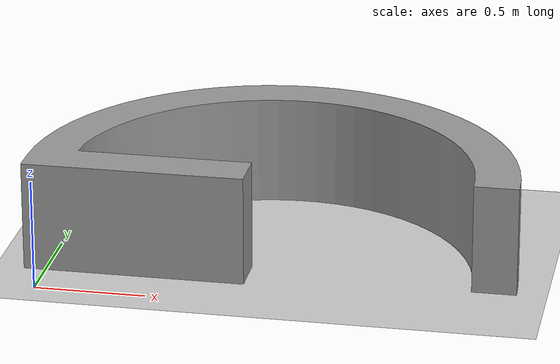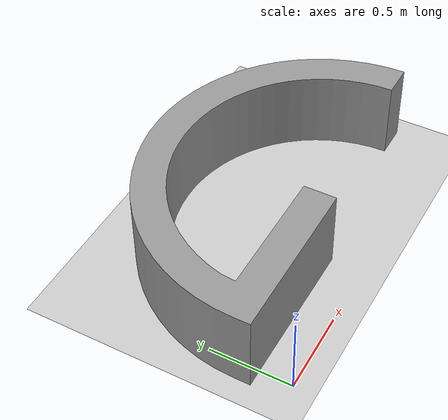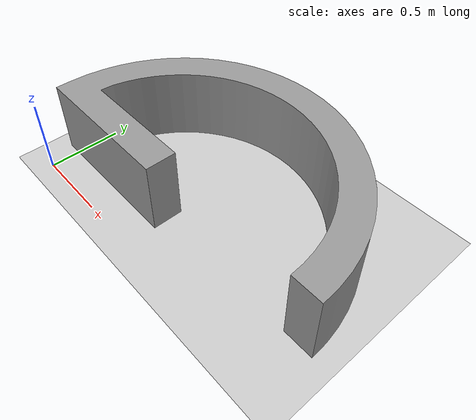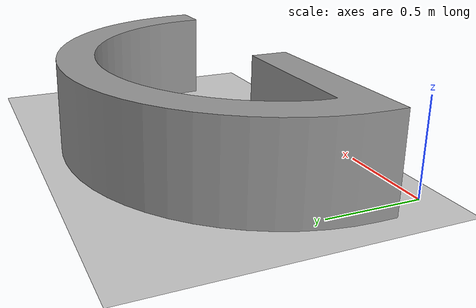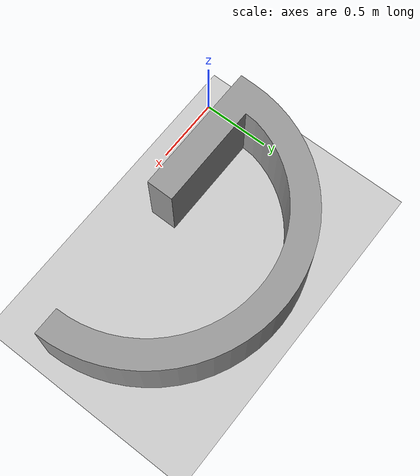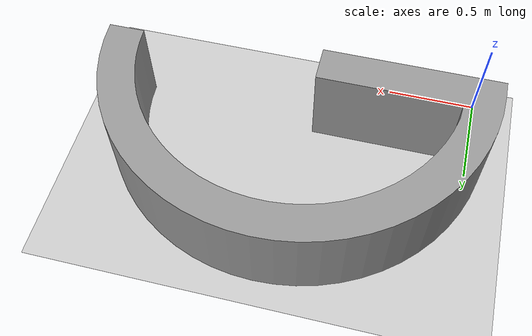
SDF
<sdf version="1.7">
 <world name="default">
  <scene><ambient>0.4 0.4 0.4 1</ambient><background>0.7 0.7 0.7 1</background><shadows>1</shadows></scene>
  <light name="sun" type="directional">
   <pose>0 0 10 0 -0 0</pose>
   <diffuse>0.8 0.8 0.8 1</diffuse>
   <specular>0.2 0.2 0.2 1</specular>
   <attenuation>
    <range>1000</range>
    <constant>0.9</constant>
    <linear>0.01</linear>
    <quadratic>0.001</quadratic>
   </attenuation>
   <direction>-0.5 0.1 -0.9</direction>
   <spot><inner_angle>0</inner_angle><outer_angle>0</outer_angle><falloff>0</falloff></spot>
  </light>
  <model name="ground_plane">
   <static>1</static>
   <link name="link">
    <collision name="collision">
     <geometry><plane><normal>0 0 1</normal><size>100 100</size></plane></geometry>
     <surface>
      <contact><collide_bitmask>65535</collide_bitmask></contact>
      <friction><ode><mu>100</mu><mu2>50</mu2></ode></friction>
     </surface>
    </collision>
    <visual name="visual">
     <cast_shadows>0</cast_shadows>
     <geometry><plane><normal>0 0 1</normal><size>100 100</size></plane></geometry>
     <material>
      <script><uri>file://media/materials/scripts/gazebo.material</uri><name>Gazebo/Grey</name></script>
     </material>
    </visual>
   </link>
  </model>
  <physics type="ode">
   <real_time_update_rate>1000</real_time_update_rate>
   <max_step_size>0.001</max_step_size>
   <real_time_factor>1</real_time_factor>
   <ode>
    <solver>
     <type>quick</type>
     <iters>150</iters>
     <precon_iters>0</precon_iters>
     <sor>1.4</sor>
     <use_dynamic_moi_rescaling>1</use_dynamic_moi_rescaling>
    </solver>
    <constraints>
     <cfm>1e-05</cfm>
     <erp>0.2</erp>
     <contact_max_correcting_vel>2000</contact_max_correcting_vel>
     <contact_surface_layer>0.01</contact_surface_layer>
    </constraints>
   </ode>
  </physics>
  <gravity>0 0 -9.8</gravity>
  <magnetic_field>6e-06 2.3e-05 -4.2e-05</magnetic_field>
  <atmosphere type="adiabatic"/>
  <spherical_coordinates>
   <surface_model>EARTH_WGS84</surface_model>
   <latitude_deg>0</latitude_deg>
   <longitude_deg>0</longitude_deg>
   <elevation>0</elevation>
   <heading_deg>0</heading_deg>
  </spherical_coordinates>
  <model name="open_D_shape_02_0">
   <link name="link_2">
    <inertial>
     <mass>1</mass>
     <inertia>
      <ixx>0.166667</ixx>
      <ixy>0</ixy>
      <ixz>0</ixz>
      <iyy>0.166667</iyy>
      <iyz>0</iyz>
      <izz>0.166667</izz>
     </inertia>
    </inertial>
    <visual name="visual">
     <geometry>
      <mesh><uri>/root/catkin_ws/src/robo/models/open_D_shape_02.dae</uri><scale>1 1 1</scale></mesh>
     </geometry>
     <material>
      <lighting>1</lighting>
      <script><uri>file://media/materials/scripts/gazebo.material</uri><name>Gazebo/Grey</name></script>
      <shader type="pixel"><normal_map>__default__</normal_map></shader>
      <ambient>0.3 0.3 0.3 1</ambient>
      <diffuse>0.7 0.7 0.7 1</diffuse>
      <specular>0.01 0.01 0.01 1</specular>
      <emissive>0 0 0 1</emissive>
     </material>
    </visual>
    <collision name="collision">
     <geometry>
      <mesh><uri>/root/catkin_ws/src/robo/models/open_D_shape_02.dae</uri><scale>1 1 1</scale></mesh>
     </geometry>
     <surface>
      <friction>
       <ode><mu>1</mu><mu2>1</mu2><fdir1>0 0 0</fdir1><slip1>0</slip1><slip2>0</slip2></ode>
       <torsional>
        <coefficient>1</coefficient>
        <patch_radius>0</patch_radius>
        <surface_radius>0</surface_radius>
        <use_patch_radius>1</use_patch_radius>
        <ode><slip>0</slip></ode>
       </torsional>
      </friction>
      <bounce><restitution_coefficient>0</restitution_coefficient><threshold>1e+06</threshold></bounce>
      <contact>
       <collide_without_contact>0</collide_without_contact>
       <collide_without_contact_bitmask>1</collide_without_contact_bitmask>
       <collide_bitmask>1</collide_bitmask>
       <ode>
        <soft_cfm>0</soft_cfm>
        <soft_erp>0.2</soft_erp>
        <kp>1e+13</kp>
        <kd>1</kd>
        <max_vel>0.01</max_vel>
        <min_depth>0</min_depth>
       </ode>
       <bullet>
        <split_impulse>1</split_impulse>
        <split_impulse_penetration_threshold>-0.01</split_impulse_penetration_threshold>
        <soft_cfm>0</soft_cfm>
        <soft_erp>0.2</soft_erp>
        <kp>1e+13</kp>
        <kd>1</kd>
       </bullet>
      </contact>
     </surface>
    </collision>
   </link>
   <static>0</static>
   <pose>0 0.3 0 0 -0 0</pose>
  </model>
 </world>
</sdf>
